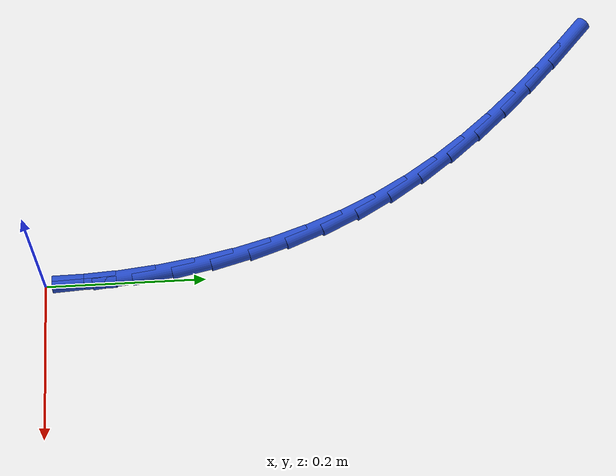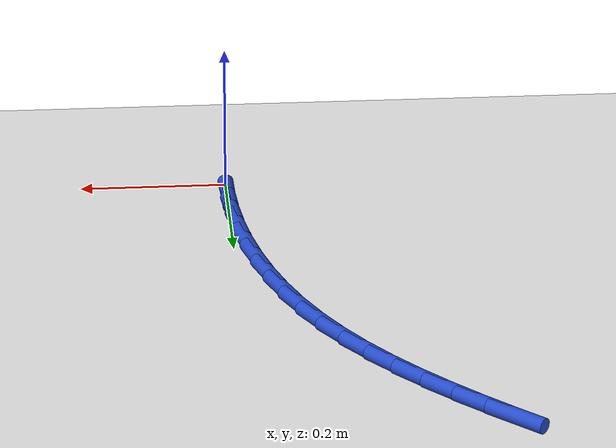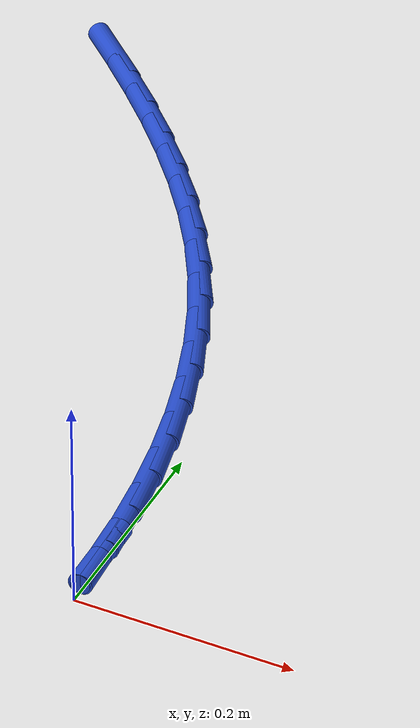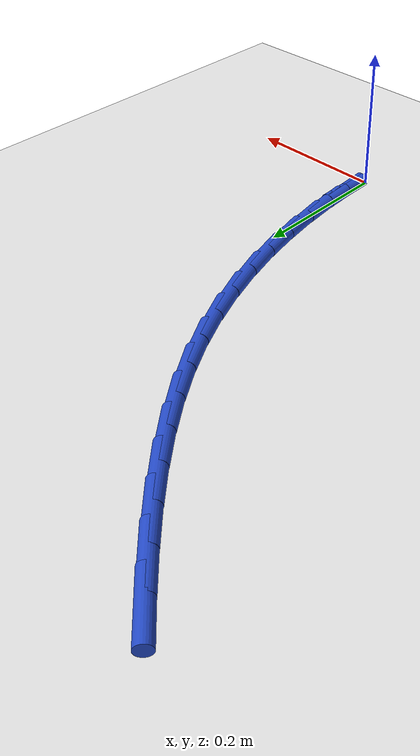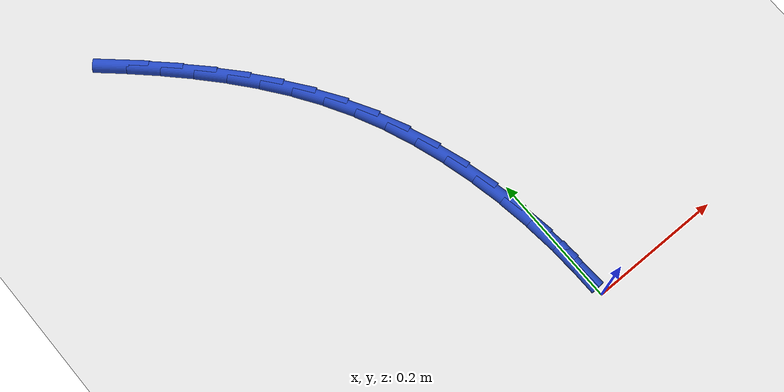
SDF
<sdf version="1.6">
 <world name="default">
  <model name="ground_plane">
   <static>1</static>
   <link name="link">
    <collision name="collision">
     <geometry><plane><normal>0 0 1</normal><size>100 100</size></plane></geometry>
     <surface><friction><ode><mu>100</mu><mu2>50</mu2></ode></friction></surface>
    </collision>
    <visual name="visual">
     <cast_shadows>0</cast_shadows>
     <geometry><plane><normal>0 0 1</normal><size>100 100</size></plane></geometry>
     <material>
      <script><uri>file://media/materials/scripts/gazebo.material</uri><name>Gazebo/WhiteGlow</name></script>
     </material>
    </visual>
   </link>
  </model>
  <model name="line">
   <link name="link_1">
    <pose>-0.0007098977526530641 0.04964904367822557 0.01 0 1.57 -1.5098913511678889</pose>
    <collision name="collision">
     <geometry><cylinder><radius>0.01</radius><length>0.08</length></cylinder></geometry>
    </collision>
    <visual name="visual">
     <material>
      <script><name>Gazebo/Blue</name><uri>file://media/materials/scripts/gazebo.material</uri></script>
     </material>
     <geometry><cylinder><radius>0.01</radius><length>0.08</length></cylinder></geometry>
    </visual>
   </link>
   <link name="link_2">
    <pose>-0.0037348885526283983 0.09925499995855847 0.01 0 1.57 -1.461689081977313</pose>
    <collision name="collision">
     <geometry><cylinder><radius>0.01</radius><length>0.08</length></cylinder></geometry>
    </collision>
    <visual name="visual">
     <material>
      <script><name>Gazebo/Blue</name><uri>file://media/materials/scripts/gazebo.material</uri></script>
     </material>
     <geometry><cylinder><radius>0.01</radius><length>0.08</length></cylinder></geometry>
    </visual>
   </link>
   <link name="link_3">
    <pose>-0.00913995167566396 0.14859726037698096 0.01 0 1.57 -1.4114857236044163</pose>
    <collision name="collision">
     <geometry><cylinder><radius>0.01</radius><length>0.08</length></cylinder></geometry>
    </collision>
    <visual name="visual">
     <material>
      <script><name>Gazebo/Blue</name><uri>file://media/materials/scripts/gazebo.material</uri></script>
     </material>
     <geometry><cylinder><radius>0.01</radius><length>0.08</length></cylinder></geometry>
    </visual>
   </link>
   <link name="link_4">
    <pose>-0.01699006639749768 0.19745521646947506 0.01 0 1.57 -1.358876434776955</pose>
    <collision name="collision">
     <geometry><cylinder><radius>0.01</radius><length>0.08</length></cylinder></geometry>
    </collision>
    <visual name="visual">
     <material>
      <script><name>Gazebo/Blue</name><uri>file://media/materials/scripts/gazebo.material</uri></script>
     </material>
     <geometry><cylinder><radius>0.01</radius><length>0.08</length></cylinder></geometry>
    </visual>
   </link>
   <link name="link_5">
    <pose>-0.02735021199386751 0.245608259772023 0.01 0 1.57 -1.303462174925534</pose>
    <collision name="collision">
     <geometry><cylinder><radius>0.01</radius><length>0.08</length></cylinder></geometry>
    </collision>
    <visual name="visual">
     <material>
      <script><name>Gazebo/Blue</name><uri>file://media/materials/scripts/gazebo.material</uri></script>
     </material>
     <geometry><cylinder><radius>0.01</radius><length>0.08</length></cylinder></geometry>
    </visual>
   </link>
   <link name="link_6">
    <pose>-0.04028536774051138 0.292835781820607 0.01 0 1.57 -1.244858785908158</pose>
    <collision name="collision">
     <geometry><cylinder><radius>0.01</radius><length>0.08</length></cylinder></geometry>
    </collision>
    <visual name="visual">
     <material>
      <script><name>Gazebo/Blue</name><uri>file://media/materials/scripts/gazebo.material</uri></script>
     </material>
     <geometry><cylinder><radius>0.01</radius><length>0.08</length></cylinder></geometry>
    </visual>
   </link>
   <link name="link_7">
    <pose>-0.05586051291316721 0.3389171741512089 0.01 0 1.57 -1.1827122122715916</pose>
    <collision name="collision">
     <geometry><cylinder><radius>0.01</radius><length>0.08</length></cylinder></geometry>
    </collision>
    <visual name="visual">
     <material>
      <script><name>Gazebo/Blue</name><uri>file://media/materials/scripts/gazebo.material</uri></script>
     </material>
     <geometry><cylinder><radius>0.01</radius><length>0.08</length></cylinder></geometry>
    </visual>
   </link>
   <link name="link_8">
    <pose>-0.074140626787573 0.38363182829981124 0.01 0 1.57 -1.1167210165554227</pose>
    <collision name="collision">
     <geometry><cylinder><radius>0.01</radius><length>0.08</length></cylinder></geometry>
    </collision>
    <visual name="visual">
     <material>
      <script><name>Gazebo/Blue</name><uri>file://media/materials/scripts/gazebo.material</uri></script>
     </material>
     <geometry><cylinder><radius>0.01</radius><length>0.08</length></cylinder></geometry>
    </visual>
   </link>
   <link name="link_9">
    <pose>-0.09519068863946656 0.4267591358023958 0.01 0 1.57 -1.0476341555985051</pose>
    <collision name="collision">
     <geometry><cylinder><radius>0.01</radius><length>0.08</length></cylinder></geometry>
    </collision>
    <visual name="visual">
     <material>
      <script><name>Gazebo/Blue</name><uri>file://media/materials/scripts/gazebo.material</uri></script>
     </material>
     <geometry><cylinder><radius>0.01</radius><length>0.08</length></cylinder></geometry>
    </visual>
   </link>
   <link name="link_10">
    <pose>-0.11904393571678058 0.46811586092543533 0.01 0 1.57 -0.9820715219565893</pose>
    <collision name="collision">
     <geometry><cylinder><radius>0.01</radius><length>0.08</length></cylinder></geometry>
    </collision>
    <visual name="visual">
     <material>
      <script><name>Gazebo/Blue</name><uri>file://media/materials/scripts/gazebo.material</uri></script>
     </material>
     <geometry><cylinder><radius>0.01</radius><length>0.08</length></cylinder></geometry>
    </visual>
   </link>
   <link name="link_11">
    <pose>-0.14552089095877485 0.5077692155305663 0.01 0 1.57 -0.9232161957709449</pose>
    <collision name="collision">
     <geometry><cylinder><radius>0.01</radius><length>0.08</length></cylinder></geometry>
    </collision>
    <visual name="visual">
     <material>
      <script><name>Gazebo/Blue</name><uri>file://media/materials/scripts/gazebo.material</uri></script>
     </material>
     <geometry><cylinder><radius>0.01</radius><length>0.08</length></cylinder></geometry>
    </visual>
   </link>
   <link name="link_12">
    <pose>-0.17435467349826453 0.5458893198040637 0.01 0 1.57 -0.8713819181476368</pose>
    <collision name="collision">
     <geometry><cylinder><radius>0.01</radius><length>0.08</length></cylinder></geometry>
    </collision>
    <visual name="visual">
     <material>
      <script><name>Gazebo/Blue</name><uri>file://media/materials/scripts/gazebo.material</uri></script>
     </material>
     <geometry><cylinder><radius>0.01</radius><length>0.08</length></cylinder></geometry>
    </visual>
   </link>
   <link name="link_13">
    <pose>-0.20527813430308509 0.5826466096668362 0.01 0 1.57 -0.8266408173221186</pose>
    <collision name="collision">
     <geometry><cylinder><radius>0.01</radius><length>0.08</length></cylinder></geometry>
    </collision>
    <visual name="visual">
     <material>
      <script><name>Gazebo/Blue</name><uri>file://media/materials/scripts/gazebo.material</uri></script>
     </material>
     <geometry><cylinder><radius>0.01</radius><length>0.08</length></cylinder></geometry>
    </visual>
   </link>
   <link name="link_14">
    <pose>-0.23802412434107206 0.6182115210397927 0.01 0 1.57 -0.7889074943987042</pose>
    <collision name="collision">
     <geometry><cylinder><radius>0.01</radius><length>0.08</length></cylinder></geometry>
    </collision>
    <visual name="visual">
     <material>
      <script><name>Gazebo/Blue</name><uri>file://media/materials/scripts/gazebo.material</uri></script>
     </material>
     <geometry><cylinder><radius>0.01</radius><length>0.08</length></cylinder></geometry>
    </visual>
   </link>
   <link name="link_15">
    <pose>-0.27232549458006106 0.6527544898438419 0.01 0 1.57 -0.7580073522105671</pose>
    <collision name="collision">
     <geometry><cylinder><radius>0.01</radius><length>0.08</length></cylinder></geometry>
    </collision>
    <visual name="visual">
     <material>
      <script><name>Gazebo/Blue</name><uri>file://media/materials/scripts/gazebo.material</uri></script>
     </material>
     <geometry><cylinder><radius>0.01</radius><length>0.08</length></cylinder></geometry>
    </visual>
   </link>
   <link name="link_16">
    <pose>-0.3079150959878875 0.6864459519998917 0.01 0 1.57 -0.7337315099448477</pose>
    <collision name="collision">
     <geometry><cylinder><radius>0.01</radius><length>0.08</length></cylinder></geometry>
    </collision>
    <visual name="visual">
     <material>
      <script><name>Gazebo/Blue</name><uri>file://media/materials/scripts/gazebo.material</uri></script>
     </material>
     <geometry><cylinder><radius>0.01</radius><length>0.08</length></cylinder></geometry>
    </visual>
   </link>
   <link name="link_141">
    <pose>-0.0006983716214670633 0.049668404249442716 0.01 0 1.57 -1.5567365716216874</pose>
    <collision name="collision">
     <geometry><cylinder><radius>0.01</radius><length>0.08</length></cylinder></geometry>
    </collision>
    <visual name="visual">
     <material>
      <script><name>Gazebo/Blue</name><uri>file://media/materials/scripts/gazebo.material</uri></script>
     </material>
     <geometry><cylinder><radius>0.01</radius><length>0.08</length></cylinder></geometry>
    </visual>
   </link>
  </model>
 </world>
</sdf>
